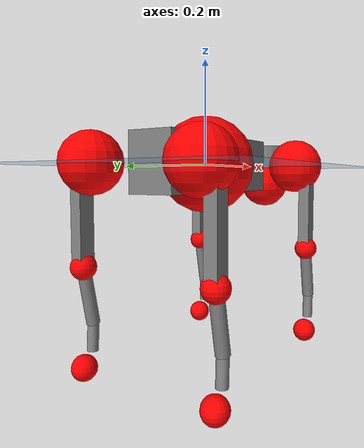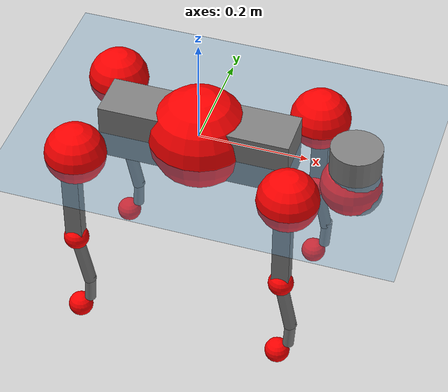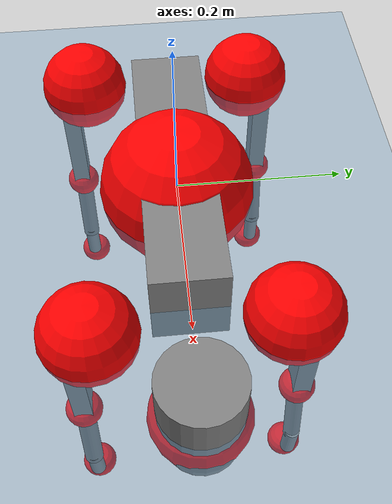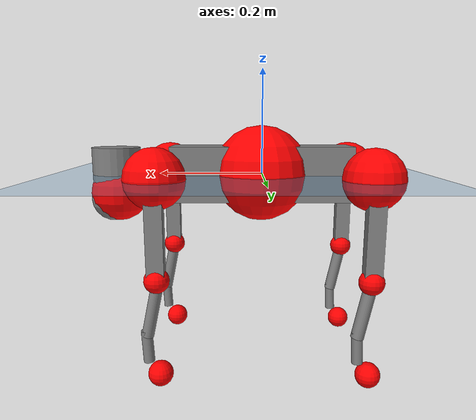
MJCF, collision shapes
<mujoco model="go2">
  <compiler angle="radian" assetdir="assets" balanceinertia="true" inertiafromgeom="false"/>

  <option timestep="0.005" density="1.2" viscosity="2e-05"/>

  <size nkey="1"/>

  <visual>
    <quality shadowsize="8192"/>
    <map shadowclip="0.5"/>
  </visual>

  <default>
    <default class="/">
      <geom contype="0" conaffinity="0" group="1" solref="-1000 -80"/>
      <site size="0.01 0.005 0.005" group="5"/>
      <general forcelimited="true" biastype="affine" gainprm="20" biasprm="0 -20 -0.5"/>
      <default class="go2">
        <joint armature="0.01" damping="0.01" frictionloss="0.2"/>
        <geom condim="1" margin="0.001"/>
        <default class="visual">
          <geom type="mesh" group="2"/>
        </default>
        <default class="collision">
          <geom group="3"/>
          <default class="foot">
            <geom size="0.022 0 0" condim="6" priority="1" friction="0.8 0.02 0.01" solimp="0.015 1 0.022"/>
          </default>
        </default>
        <default class="reward_collision_sphere">
          <geom group="5" rgba="1 0 0 1"/>
        </default>
      </default>
    </default>
  </default>

  <asset>
    <texture type="skybox" colorspace="auto" name="//unnamed_texture_0" builtin="gradient" rgb1="0.95 0.95 0.95" rgb2="0.95 0.95 0.95" width="100" height="600"/>
    <texture type="2d" colorspace="auto" name="texplane" builtin="checker" rgb1="0.345 0.575 0.748" rgb2="0.345 0.575 0.748" markrgb="1 1 1" width="512" height="512"/>
    <material name="MatPlane" class="/" texture="texplane" texuniform="true" texrepeat="2 2" specular="0.9"/>
    <material name="metal" class="/" rgba="0.9 0.95 0.95 1"/>
    <material name="black" class="/" rgba="0 0 0 1"/>
    <material name="white" class="/"/>
    <material name="gray" class="/" rgba="0.671705 0.692426 0.77427 1"/>
    <mesh name="base_0" class="/" file="base_0.obj"/>
    <mesh name="base_1" class="/" file="base_1.obj"/>
    <mesh name="base_2" class="/" file="base_2.obj"/>
    <mesh name="base_3" class="/" file="base_3.obj"/>
    <mesh name="base_4" class="/" file="base_4.obj"/>
    <mesh name="hip_0" class="/" file="hip_0.obj"/>
    <mesh name="hip_1" class="/" file="hip_1.obj"/>
    <mesh name="thigh_0" class="/" file="thigh_0.obj"/>
    <mesh name="thigh_1" class="/" file="thigh_1.obj"/>
    <mesh name="thigh_mirror_0" class="/" file="thigh_mirror_0.obj"/>
    <mesh name="thigh_mirror_1" class="/" file="thigh_mirror_1.obj"/>
    <mesh name="calf_0" class="/" file="calf_0.obj"/>
    <mesh name="calf_1" class="/" file="calf_1.obj"/>
    <mesh name="calf_mirror_0" class="/" file="calf_mirror_0.obj"/>
    <mesh name="calf_mirror_1" class="/" file="calf_mirror_1.obj"/>
    <mesh name="foot" class="/" file="foot.obj"/>
  </asset>

  <worldbody>
    <geom name="floor" class="/" size="100 100 0.125" type="plane" group="0" material="MatPlane"/>
    <light name="toplight_shadow" class="/" pos="0 0 5" dir="0.0990148 0.0990148 -0.990148" type="directional" ambient="0.04 0.04 0.04" diffuse="0.55 0.55 0.55" specular="0.12 0.12 0.12"/>
    <light name="toplight_fill" class="/" pos="0 0 5" dir="0.0990148 0.0990148 -0.990148" type="directional" castshadow="false" ambient="0.04 0.04 0.04" diffuse="0.3 0.3 0.3" specular="0.08 0.08 0.08"/>
    <body name="trunk" childclass="go2" pos="0.0012604 0.000194821 0.00089873" quat="1 0.000132714 -0.000245364 0.000234185">
      <inertial pos="0.0199115 -0.00110168 -0.00493476" quat="0.00165407 0.713083 -0.000638795 0.701077" mass="5.404" diaginertia="0.104936 0.0729642 0.0103818"/>
      <joint name="//unnamed_joint_0" type="free" armature="0" damping="0" frictionloss="0"/>
      <geom name="//unnamed_geom_1" class="visual" material="black" mesh="base_0"/>
      <geom name="//unnamed_geom_2" class="visual" material="black" mesh="base_1"/>
      <geom name="//unnamed_geom_3" class="visual" material="black" mesh="base_2"/>
      <geom name="//unnamed_geom_4" class="visual" material="white" mesh="base_3"/>
      <geom name="//unnamed_geom_5" class="visual" material="gray" mesh="base_4"/>
      <geom name="trunk_1" class="collision" size="0.174697 0.0434189 0.0529385" type="box"/>
      <geom name="trunk_2" class="collision" size="0.0464373 0.0417936" pos="0.284279 0 0.00844757" type="cylinder"/>
      <geom name="trunk_3" class="collision" size="0.0436511" pos="0.292259 0 -0.0506854"/>
      <geom name="//unnamed_geom_9" class="reward_collision_sphere" size="0.0928746"/>
      <geom name="//unnamed_geom_10" class="reward_collision_sphere" size="0.0557248" pos="0.279292 0 -0.0380141"/>
      <site name="imu" pos="-0.0251379 -0.00461748 0.038514" size="0.00928746"/>
      <camera name="track" pos="0 -1.88802 0" quat="0.707107 0.707107 0 0" mode="trackcom"/>
      <camera name="ego_camera" pos="0.311211 0 0.0380141" quat="-0.5 -0.5 0.5 0.5"/>
      <body name="FL_hip" pos="0.192092 0.0434545 0.00113782" quat="1 0.000326379 0.000165818 0.000258186">
        <inertial pos="-0.00507279 0.00253913 -0.000825355" quat="0.497303 0.498855 0.505298 0.498504" mass="0.551841" diaginertia="0.00089121 0.000443705 0.000206271"/>
        <joint name="FL_hip_joint" pos="0 0 0" axis="0.99993 0.0118218 0.000559889" stiffness="0.00455416" range="-1.02682 1.04404" armature="0.00924879" damping="0" frictionloss="0.184464"/>
        <geom name="//unnamed_geom_11" class="visual" material="metal" mesh="hip_0"/>
        <geom name="//unnamed_geom_12" class="visual" material="gray" mesh="hip_1"/>
        <geom name="//unnamed_geom_13" class="collision" size="0.0427223 0.0185749" pos="0 0.075521 0" quat="0.707107 0.707107 0 0" type="cylinder"/>
        <geom name="//unnamed_geom_14" class="reward_collision_sphere" size="0.0557248" pos="0 0.0660808 0"/>
        <body name="FL_thigh" pos="-0.00138613 0.0898704 0.00155268" quat="1 1.14131e-05 -1.78944e-06 1.35708e-05">
          <inertial pos="-0.00443307 -0.0201636 -0.0281123" quat="0.829678 0.0847938 -0.0201403 0.551398" mass="0.931006" diaginertia="0.00583862 0.00439398 0.000386726"/>
          <joint name="FL_thigh_joint" pos="0 0 0" axis="0.00579888 0.99998 -0.00244731" range="-1.58683 3.49171" armature="0.0095066" damping="0.00460003" frictionloss="0.190143"/>
          <geom name="//unnamed_geom_15" class="visual" material="metal" mesh="thigh_0"/>
          <geom name="//unnamed_geom_16" class="visual" material="gray" mesh="thigh_1"/>
          <geom name="//unnamed_geom_17" class="collision" size="0.0989115 0.0113771 0.0157887" pos="0 0 -0.0899666" quat="0.707107 0 0.707107 0" type="box"/>
          <body name="FL_calf" pos="-0.000289916 -0.00159854 -0.180274" quat="1 3.84213e-05 0.000252901 -0.000337816">
            <inertial pos="0.00634336 -0.000447321 -0.119528" quat="0.709833 0.000394291 -0.00163529 0.704368" mass="0.193471" diaginertia="0.00151292 0.00110559 2.32112e-05"/>
            <joint name="FL_calf_joint" pos="0 0 0" axis="-0.00238306 0.999997 -0.000176206" range="-2.73909 -0.840351" armature="0.00889406" damping="0.00222283" frictionloss="0.177199"/>
            <geom name="//unnamed_geom_18" class="visual" material="gray" mesh="calf_0"/>
            <geom name="//unnamed_geom_19" class="visual" material="black" mesh="calf_1"/>
            <geom name="FL_calf0" class="collision" size="0.011145 0.0557248" pos="0.00797976 0 -0.0506854" quat="0.994493 0 -0.104807 0" type="cylinder"/>
            <geom name="//unnamed_geom_21" class="collision" size="0.0102162 0.0301843" pos="0.0199494 0 -0.125024" quat="0.999688 0 0.0249974 0" type="cylinder"/>
            <geom name="//unnamed_geom_22" class="visual" pos="0 0 -0.179933" quat="1 0 0 0" material="black" mesh="foot"/>
            <geom name="FL_foot" class="foot" size="0.017077" pos="-0.00199494 0 -0.179933"/>
            <geom name="//unnamed_geom_24" class="reward_collision_sphere" size="0.0232187"/>
            <geom name="//unnamed_geom_25" class="reward_collision_sphere" size="0.0232187" pos="-0.00199494 0 -0.179933"/>
            <site name="FL_foot" class="foot" pos="-0.00199494 0 -0.179933" size="0.00928746"/>
          </body>
        </body>
      </body>
      <body name="FR_hip" pos="0.194071 -0.0434629 -0.000895373" quat="1 7.3999e-05 3.7033e-05 0.000109507">
        <inertial pos="-0.00612233 -0.00210002 -0.000218732" quat="0.49815 0.505834 0.499185 0.496782" mass="0.543487" diaginertia="0.000886626 0.000451867 0.000210752"/>
        <joint name="FR_hip_joint" pos="0 0 0" axis="0.999999 0.00136476 0.000489491" stiffness="0.00517207" range="-1.05886 1.05068" armature="0.00924224" damping="0.0149186" frictionloss="0.184235"/>
        <geom name="//unnamed_geom_26" class="visual" pos="0 8.64671e-10 3.70875e-08" quat="4.63268e-05 1 0 0" material="metal" mesh="hip_0"/>
        <geom name="//unnamed_geom_27" class="visual" pos="0 1.40173e-09 -9.17316e-08" quat="4.63268e-05 1 0 0" material="gray" mesh="hip_1"/>
        <geom name="//unnamed_geom_28" class="collision" size="0.0427223 0.0185749" pos="0 -0.075521 0" quat="0.707107 0.707107 0 0" type="cylinder"/>
        <geom name="//unnamed_geom_29" class="reward_collision_sphere" size="0.0557248" pos="0 -0.0660808 0"/>
        <body name="FR_thigh" pos="0.000563751 -0.0916663 0.000660933" quat="1 1.76876e-05 0.000115523 0.000106292">
          <inertial pos="-0.00457334 0.0214211 -0.0274881" quat="0.552104 -0.0177862 0.0820024 0.829543" mass="0.9241" diaginertia="0.00594076 0.00444638 0.000382745"/>
          <joint name="FR_thigh_joint" pos="0 0 0" axis="-0.00425622 -0.999991 -4.69555e-05" stiffness="0.00154243" range="-3.50024 1.56811" armature="0.00924155" damping="0.0122853" frictionloss="0.178017"/>
          <geom name="//unnamed_geom_30" class="visual" material="metal" mesh="thigh_mirror_0"/>
          <geom name="//unnamed_geom_31" class="visual" material="gray" mesh="thigh_mirror_1"/>
          <geom name="//unnamed_geom_32" class="collision" size="0.0989115 0.0113771 0.0157887" pos="0 0 -0.0899666" quat="0.707107 0 0.707107 0" type="box"/>
          <body name="FR_calf" pos="-0.00015568 -0.000695778 -0.178787" quat="1 3.48135e-05 7.68273e-06 -2.63327e-05">
            <inertial pos="0.00629255 0.000547371 -0.119586" quat="0.702542 -0.00356888 -0.000183287 0.711634" mass="0.193894" diaginertia="0.0014676 0.00109539 2.29681e-05"/>
            <joint name="FR_calf_joint" pos="0 0 0" axis="-0.00438563 -0.99999 0.00102402" range="0.832431 2.7128" armature="0.00948572" damping="0.00810791" frictionloss="0.192586"/>
            <geom name="//unnamed_geom_33" class="visual" material="gray" mesh="calf_mirror_0"/>
            <geom name="//unnamed_geom_34" class="visual" material="black" mesh="calf_mirror_1"/>
            <geom name="FR_calf0" class="collision" size="0.0120737 0.0557248" pos="0.0099747 0 -0.0506854" quat="0.995004 0 -0.0998334 0" type="cylinder"/>
            <geom name="//unnamed_geom_36" class="collision" size="0.0102162 0.0301843" pos="0.0199494 0 -0.125024" quat="0.999688 0 0.0249974 0" type="cylinder"/>
            <geom name="//unnamed_geom_37" class="visual" pos="0 0 -0.179933" quat="1 0 0 0" material="black" mesh="foot"/>
            <geom name="FR_foot" class="foot" size="0.0228579" pos="-0.00199494 0 -0.179933"/>
            <geom name="//unnamed_geom_39" class="reward_collision_sphere" size="0.0232187"/>
            <geom name="//unnamed_geom_40" class="reward_collision_sphere" size="0.0232187" pos="-0.00199494 0 -0.179933"/>
            <site name="FR_foot" class="foot" pos="-0.00199494 0 -0.179933" size="0.00928746"/>
          </body>
        </body>
      </body>
      <body name="RL_hip" pos="-0.192577 0.0437793 0.000110467" quat="1 -6.37169e-05 2.39916e-05 -1.78442e-05">
        <inertial pos="0.00488764 0.00316199 0.0005017" quat="0.506689 0.499522 0.500269 0.493432" mass="0.551616" diaginertia="0.00087735 0.000449816 0.000209078"/>
        <joint name="RL_hip_joint" pos="0 0 0" axis="-0.999801 -0.0121405 -0.0158186" range="-1.0546 1.0635" armature="0.00928061" damping="0.0172423" frictionloss="0.189897"/>
        <geom name="//unnamed_geom_41" class="visual" pos="-1.33038e-09 0 -2.60784e-07" quat="4.63268e-05 0 1 0" material="metal" mesh="hip_0"/>
        <geom name="//unnamed_geom_42" class="visual" pos="-2.1567e-09 0 -2.31279e-07" quat="4.63268e-05 0 1 0" material="gray" mesh="hip_1"/>
        <geom name="//unnamed_geom_43" class="collision" size="0.0427223 0.0185749" pos="0 0.075521 0" quat="0.707107 0.707107 0 0" type="cylinder"/>
        <geom name="//unnamed_geom_44" class="reward_collision_sphere" size="0.0557248" pos="0 0.0660808 0"/>
        <body name="RL_thigh" pos="2.36542e-05 0.0895484 0.000124003" quat="1 -9.5015e-05 7.37883e-05 -0.000133298">
          <inertial pos="-0.00366365 -0.0206164 -0.0272356" quat="0.829605 0.0864376 -0.0218039 0.551189" mass="0.934498" diaginertia="0.00585602 0.00441029 0.000374934"/>
          <joint name="RL_thigh_joint" pos="0 0 0" axis="0.000259983 0.999998 -0.00174145" stiffness="0.00115914" range="-0.526711 4.53592" armature="0.00911414" damping="0.0129363" frictionloss="0.185756"/>
          <geom name="//unnamed_geom_45" class="visual" material="metal" mesh="thigh_0"/>
          <geom name="//unnamed_geom_46" class="visual" material="gray" mesh="thigh_1"/>
          <geom name="//unnamed_geom_47" class="collision" size="0.0989115 0.0113771 0.0157887" pos="0 0 -0.0899666" quat="0.707107 0 0.707107 0" type="box"/>
          <body name="RL_calf" pos="0.000153454 -0.000631246 -0.180946" quat="1 0.000178339 0.000215921 3.02254e-05">
            <inertial pos="0.00671046 0.000696472 -0.119629" quat="0.710246 0.00333494 -0.0087599 0.703891" mass="0.192353" diaginertia="0.00148155 0.00108825 2.24247e-05"/>
            <joint name="RL_calf_joint" pos="0 0 0" axis="-0.0032913 0.999976 -0.00616898" range="-2.72429 -0.853317" armature="0.00888785" damping="0.00776721" frictionloss="0.195344"/>
            <geom name="//unnamed_geom_48" class="visual" material="gray" mesh="calf_0"/>
            <geom name="//unnamed_geom_49" class="visual" material="black" mesh="calf_1"/>
            <geom name="RL_calf0" class="collision" size="0.0120737 0.0557248" pos="0.0099747 0 -0.0506854" quat="0.995004 0 -0.0998334 0" type="cylinder"/>
            <geom name="//unnamed_geom_51" class="collision" size="0.0102162 0.0301843" pos="0.0199494 0 -0.125024" quat="0.999688 0 0.0249974 0" type="cylinder"/>
            <geom name="//unnamed_geom_52" class="visual" pos="0 0 -0.179933" quat="1 0 0 0" material="black" mesh="foot"/>
            <geom name="RL_foot" class="foot" size="0.0175285" pos="-0.00199494 0 -0.179933"/>
            <geom name="//unnamed_geom_54" class="reward_collision_sphere" size="0.0232187"/>
            <geom name="//unnamed_geom_55" class="reward_collision_sphere" size="0.0232187" pos="-0.00199494 0 -0.179933"/>
            <site name="RL_foot" class="foot" pos="-0.00199494 0 -0.179933" size="0.00928746"/>
          </body>
        </body>
      </body>
      <body name="RR_hip" pos="-0.193467 -0.0433028 -0.000175162" quat="1 -0.000545147 -0.000177942 0.000219721">
        <inertial pos="0.00620476 -0.00226112 -0.000848845" quat="0.499726 0.496687 0.500133 0.503432" mass="0.541736" diaginertia="0.000870572 0.000447361 0.000206131"/>
        <joint name="RR_hip_joint" pos="0 0 0" axis="-0.999977 -0.00110003 0.00670171" range="-1.05944 1.05568" armature="0.00971272" damping="0.00834918" frictionloss="0.190352"/>
        <geom name="//unnamed_geom_56" class="visual" pos="1.32853e-09 8.64671e-10 -2.97872e-07" quat="2.14617e-09 4.63268e-05 4.63268e-05 -1" material="metal" mesh="hip_0"/>
        <geom name="//unnamed_geom_57" class="visual" pos="2.16128e-09 1.40173e-09 -1.39547e-07" quat="2.14617e-09 4.63268e-05 4.63268e-05 -1" material="gray" mesh="hip_1"/>
        <geom name="//unnamed_geom_58" class="collision" size="0.0427223 0.0185749" pos="0 -0.075521 0" quat="0.707107 0.707107 0 0" type="cylinder"/>
        <geom name="//unnamed_geom_59" class="reward_collision_sphere" size="0.0557248" pos="0 -0.0660808 0"/>
        <body name="RR_thigh" pos="-0.000202947 -0.0906976 -0.00263719" quat="1 -1.80184e-05 1.5802e-05 -1.51992e-05">
          <inertial pos="-0.00401984 0.0212253 -0.0276946" quat="0.552085 -0.0209132 0.0847328 0.829208" mass="0.921031" diaginertia="0.00584152 0.00434288 0.000377711"/>
          <joint name="RR_thigh_joint" pos="0 0 0" axis="-0.0022711 -0.99998 -0.00598246" range="-4.53904 0.530676" armature="0.00922418" damping="0.0131829" frictionloss="0.190269"/>
          <geom name="//unnamed_geom_60" class="visual" material="metal" mesh="thigh_mirror_0"/>
          <geom name="//unnamed_geom_61" class="visual" material="gray" mesh="thigh_mirror_1"/>
          <geom name="//unnamed_geom_62" class="collision" size="0.0989115 0.0113771 0.0157887" pos="0 0 -0.0899666" quat="0.707107 0 0.707107 0" type="box"/>
          <body name="RR_calf" pos="0.000539588 0.000296751 -0.181297" quat="1 -0.000151997 -0.000112362 -6.99456e-05">
            <inertial pos="0.00652499 0.00103166 -0.119746" quat="0.701095 -0.00632062 -0.0010413 0.713039" mass="0.194121" diaginertia="0.00146279 0.00109757 2.28982e-05"/>
            <joint name="RR_calf_joint" pos="0 0 0" axis="-0.00313672 -0.999974 0.00643612" range="0.83673 2.72245" armature="0.00924771" damping="0.0117111" frictionloss="0.18545"/>
            <geom name="//unnamed_geom_63" class="visual" material="gray" mesh="calf_mirror_0"/>
            <geom name="//unnamed_geom_64" class="visual" material="black" mesh="calf_mirror_1"/>
            <geom name="RR_calf0" class="collision" size="0.0120737 0.0557248" pos="0.0099747 0 -0.0506854" quat="0.995004 0 -0.0998334 0" type="cylinder"/>
            <geom name="//unnamed_geom_66" class="collision" size="0.0102162 0.0301843" pos="0.0199494 0 -0.125024" quat="0.999688 0 0.0249974 0" type="cylinder"/>
            <geom name="//unnamed_geom_67" class="visual" pos="0 0 -0.179933" quat="1 0 0 0" material="black" mesh="foot"/>
            <geom name="RR_foot" class="foot" size="0.0218171" pos="-0.00199494 0 -0.179933"/>
            <geom name="//unnamed_geom_69" class="reward_collision_sphere" size="0.0232187"/>
            <geom name="//unnamed_geom_70" class="reward_collision_sphere" size="0.0232187" pos="-0.00199494 0 -0.179933"/>
            <site name="RR_foot" class="foot" pos="-0.00199494 0 -0.179933" size="0.00928746"/>
          </body>
        </body>
      </body>
    </body>
  </worldbody>

  <contact>
    <pair class="/" geom1="floor" geom2="FL_foot" name="//unnamed_contact_0"/>
    <pair class="/" geom1="floor" geom2="FR_foot" name="//unnamed_contact_1"/>
    <pair class="/" geom1="floor" geom2="RL_foot" name="//unnamed_contact_2"/>
    <pair class="/" geom1="floor" geom2="RR_foot" name="//unnamed_contact_3"/>
  </contact>

  <actuator>
    <general name="FL_hip" class="/" joint="FL_hip_joint" forcerange="-21.8667 21.8667" gainprm="18.2517" biasprm="0 -18.2517 -0.468873"/>
    <general name="FL_thigh" class="/" joint="FL_thigh_joint" forcerange="-22.7934 22.7934" gainprm="18.2517" biasprm="0 -18.2517 -0.468873"/>
    <general name="FL_calf" class="/" joint="FL_calf_joint" forcerange="-41.3075 41.3075" gainprm="18.2517" biasprm="0 -18.2517 -0.468873"/>
    <general name="FR_hip" class="/" joint="FR_hip_joint" forcerange="-22.1312 22.1312" gainprm="18.2517" biasprm="0 -18.2517 -0.468873"/>
    <general name="FR_thigh" class="/" joint="FR_thigh_joint" forcerange="-21.2155 21.2155" gainprm="18.2517" biasprm="0 -18.2517 -0.468873"/>
    <general name="FR_calf" class="/" joint="FR_calf_joint" forcerange="-41.9468 41.9468" gainprm="18.2517" biasprm="0 -18.2517 -0.468873"/>
    <general name="RL_hip" class="/" joint="RL_hip_joint" forcerange="-22.8497 22.8497" gainprm="18.2517" biasprm="0 -18.2517 -0.468873"/>
    <general name="RL_thigh" class="/" joint="RL_thigh_joint" forcerange="-22.7686 22.7686" gainprm="18.2517" biasprm="0 -18.2517 -0.468873"/>
    <general name="RL_calf" class="/" joint="RL_calf_joint" forcerange="-40.9381 40.9381" gainprm="18.2517" biasprm="0 -18.2517 -0.468873"/>
    <general name="RR_hip" class="/" joint="RR_hip_joint" forcerange="-22.5163 22.5163" gainprm="18.2517" biasprm="0 -18.2517 -0.468873"/>
    <general name="RR_thigh" class="/" joint="RR_thigh_joint" forcerange="-22.6151 22.6151" gainprm="18.2517" biasprm="0 -18.2517 -0.468873"/>
    <general name="RR_calf" class="/" joint="RR_calf_joint" forcerange="-43.1037 43.1037" gainprm="18.2517" biasprm="0 -18.2517 -0.468873"/>
  </actuator>

  <sensor>
    <gyro site="imu" name="imu_angular_velocity"/>
    <velocimeter site="imu" name="imu_linear_velocity"/>
    <framelinvel objtype="site" objname="FL_foot" name="FL_foot_global_linear_velocity"/>
    <framelinvel objtype="site" objname="FR_foot" name="FR_foot_global_linear_velocity"/>
    <framelinvel objtype="site" objname="RL_foot" name="RL_foot_global_linear_velocity"/>
    <framelinvel objtype="site" objname="RR_foot" name="RR_foot_global_linear_velocity"/>
  </sensor>

  <keyframe>
    <key name="home" qpos="0 0 0.325 1 0 0 0 0.1 0.8 -1.5 -0.1 -0.8 1.5 -0.1 0.8 -1.5 0.1 -0.8 1.5"/>
  </keyframe>
</mujoco>
